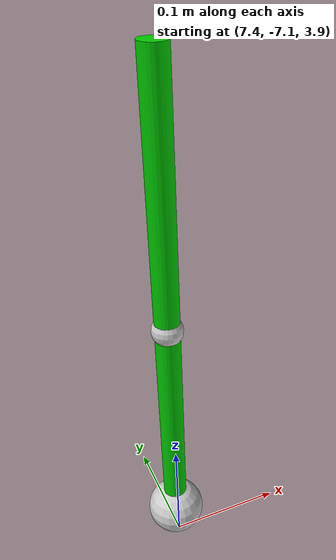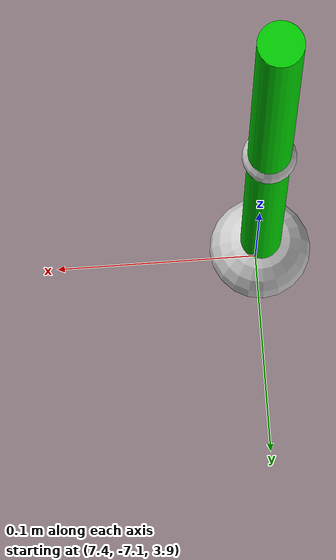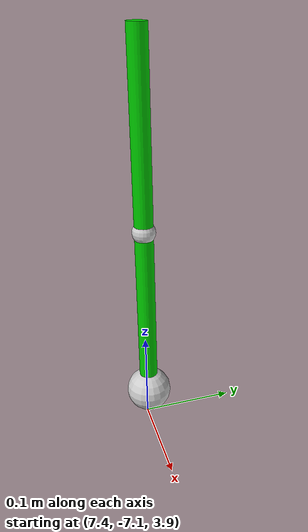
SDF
<sdf version='1.10'>
  <world name='default'>
    <physics name='fast' type='ignored'>
      <real_time_factor>0</real_time_factor>
      <max_step_size>0.001</max_step_size>
      <real_time_update_rate>1000</real_time_update_rate>
    </physics>
    <gravity>0 0 -9.8000000000000007</gravity>
    <magnetic_field>5.5644999999999998e-06 2.2875799999999999e-05 -4.2388400000000002e-05</magnetic_field>
    <atmosphere type='adiabatic'/>
    <scene>
      <ambient>0.400000006 0.400000006 0.400000006 1</ambient>
      <background>0.699999988 0.699999988 0.699999988 1</background>
      <shadows>true</shadows>
    </scene>
    <model name='ground_plane'>
      <static>true</static>
      <link name='link'>
        <collision name='collision'>
          <geometry>
            <plane>
              <normal>0 0 1</normal>
              <size>100 100</size>
            </plane>
          </geometry>
          <surface>
            <friction>
              <ode>
                <mu>100</mu>
                <mu2>50</mu2>
              </ode>
            </friction>
            <bounce/>
            <contact/>
          </surface>
        </collision>
        <visual name='visual'>
          <cast_shadows>false</cast_shadows>
          <geometry>
            <plane>
              <normal>0 0 1</normal>
              <size>100 100</size>
            </plane>
          </geometry>
          <material>
            <script>
              <uri>file://media/materials/scripts/gazebo.material</uri>
              <name>Gazebo/Grey</name>
            </script>
          </material>
        </visual>
        <pose>0 0 0 0 0 0</pose>
        <inertial>
          <pose>0 0 0 0 0 0</pose>
          <mass>1</mass>
          <inertia>
            <ixx>1</ixx>
            <ixy>0</ixy>
            <ixz>0</ixz>
            <iyy>1</iyy>
            <iyz>0</iyz>
            <izz>1</izz>
          </inertia>
        </inertial>
        <enable_wind>false</enable_wind>
      </link>
      <pose>0 0 0 0 0 0</pose>
      <self_collide>false</self_collide>
    </model>
    <model name='model'>
      <pose>7.3987582367434541 -7.0973352519422779 3.9311026872948176 0 0 0</pose>
      <joint name='RR_velocity_control_world' type='fixed'>
        <parent>world</parent>
        <child>RR_velocity_control_link0</child>
        <pose>0 0 0 0 0 0</pose>
      </joint>
      <link name='RR_velocity_control_link0'>
        <collision name='RR_velocity_control_link0_collision_0'>
          <geometry>
            <sphere>
              <radius>0.025000000000000001</radius>
            </sphere>
          </geometry>
          <surface>
            <friction>
              <ode/>
            </friction>
            <bounce/>
            <contact/>
          </surface>
        </collision>
        <visual name='RR_velocity_control_link0_visual_0'>
          <geometry>
            <sphere>
              <radius>0.025000000000000001</radius>
            </sphere>
          </geometry>
          <material>
            <ambient>0.5 0.5 0.5 1</ambient>
            <diffuse>0.800000012 0.800000012 0.800000012 1</diffuse>
            <specular>0.800000012 0.800000012 0.800000012 1</specular>
          </material>
        </visual>
        <pose>0 0 0 0 0 0</pose>
        <inertial>
          <pose>0 0 0 0 0 0</pose>
          <mass>1</mass>
          <inertia>
            <ixx>1</ixx>
            <ixy>0</ixy>
            <ixz>0</ixz>
            <iyy>1</iyy>
            <iyz>0</iyz>
            <izz>1</izz>
          </inertia>
        </inertial>
        <enable_wind>false</enable_wind>
      </link>
      <link name='RR_velocity_control_link1'>
        <pose>0 0 0.099999999999999645 0 0 0</pose>
        <collision name='RR_velocity_control_link1_collision_0'>
          <geometry>
            <cylinder>
              <radius>0.01</radius>
              <length>0.20000000000000001</length>
            </cylinder>
          </geometry>
          <surface>
            <friction>
              <ode/>
            </friction>
            <bounce/>
            <contact/>
          </surface>
        </collision>
        <collision name='RR_velocity_control_link1_collision_1'>
          <geometry>
            <sphere>
              <radius>0.012500000000000001</radius>
            </sphere>
          </geometry>
          <surface>
            <friction>
              <ode/>
            </friction>
            <bounce/>
            <contact/>
          </surface>
        </collision>
        <visual name='RR_velocity_control_link1_visual_0'>
          <geometry>
            <cylinder>
              <radius>0.01</radius>
              <length>0.20000000000000001</length>
            </cylinder>
          </geometry>
          <material>
            <ambient>0 0.5 0 1</ambient>
            <diffuse>0 0.800000012 0 1</diffuse>
            <specular>0 0.800000012 0 1</specular>
          </material>
        </visual>
        <visual name='RR_velocity_control_link1_visual_1'>
          <pose relative_to='RR_velocity_control_joint1'>0 0 0.20000000000000001 0 0 0</pose>
          <geometry>
            <sphere>
              <radius>0.012500000000000001</radius>
            </sphere>
          </geometry>
          <material>
            <ambient>0.5 0.5 0.5 1</ambient>
            <diffuse>0.800000012 0.800000012 0.800000012 1</diffuse>
            <specular>0.800000012 0.800000012 0.800000012 1</specular>
          </material>
        </visual>
        <inertial>
          <mass>0.10000000000000001</mass>
          <inertia>
            <ixx>0.00033579999999999998</ixx>
            <iyy>0.00033579999999999998</iyy>
            <izz>5.0000000000000004e-06</izz>
            <ixy>0</ixy>
            <ixz>0</ixz>
            <iyz>0</iyz>
          </inertia>
          <pose>0 0 0 0 0 0</pose>
        </inertial>
        <enable_wind>false</enable_wind>
      </link>
      <link name='RR_velocity_control_link2'>
        <pose>0 0 0.29999999999999982 0 0 0</pose>
        <collision name='RR_velocity_control_link2_collision'>
          <geometry>
            <cylinder>
              <radius>0.01</radius>
              <length>0.20000000000000001</length>
            </cylinder>
          </geometry>
          <surface>
            <friction>
              <ode/>
            </friction>
            <bounce/>
            <contact/>
          </surface>
        </collision>
        <visual name='RR_velocity_control_link2_visual'>
          <geometry>
            <cylinder>
              <radius>0.01</radius>
              <length>0.20000000000000001</length>
            </cylinder>
          </geometry>
          <material>
            <ambient>0 0.5 0 1</ambient>
            <diffuse>0 0.800000012 0 1</diffuse>
            <specular>0 0.800000012 0 1</specular>
          </material>
        </visual>
        <inertial>
          <mass>0.10000000000000001</mass>
          <inertia>
            <ixx>0.00033579999999999998</ixx>
            <iyy>0.00033579999999999998</iyy>
            <izz>5.0000000000000004e-06</izz>
            <ixy>0</ixy>
            <ixz>0</ixz>
            <iyz>0</iyz>
          </inertia>
          <pose>0 0 0 0 0 0</pose>
        </inertial>
        <enable_wind>false</enable_wind>
      </link>
      <joint name='RR_velocity_control_joint1' type='revolute'>
        <pose>0 0 -0.10000000000000001 0 0 0</pose>
        <parent>RR_velocity_control_link0</parent>
        <child>RR_velocity_control_link1</child>
        <axis>
          <xyz>1 0 0</xyz>
          <limit>
            <lower>-inf</lower>
            <upper>inf</upper>
            <effort>inf</effort>
            <velocity>inf</velocity>
            <stiffness>100000000</stiffness>
            <dissipation>1</dissipation>
          </limit>
          <dynamics>
            <spring_reference>0</spring_reference>
            <spring_stiffness>0</spring_stiffness>
            <damping>0</damping>
            <friction>0</friction>
          </dynamics>
        </axis>
        <dynamics>
          <damping>0.02</damping>
        </dynamics>
      </joint>
      <joint name='RR_velocity_control_joint2' type='revolute'>
        <pose>0 0 -0.10000000000000003 0 0 0</pose>
        <parent>RR_velocity_control_link1</parent>
        <child>RR_velocity_control_link2</child>
        <axis>
          <xyz>1 0 0</xyz>
          <limit>
            <lower>-inf</lower>
            <upper>inf</upper>
            <effort>inf</effort>
            <velocity>inf</velocity>
            <stiffness>100000000</stiffness>
            <dissipation>1</dissipation>
          </limit>
          <dynamics>
            <spring_reference>0</spring_reference>
            <spring_stiffness>0</spring_stiffness>
            <damping>0</damping>
            <friction>0</friction>
          </dynamics>
        </axis>
        <dynamics>
          <damping>0.01</damping>
        </dynamics>
      </joint>
      <plugin name='gz::sim::systems::JointTrajectoryController' filename='gz-sim-joint-trajectory-controller-system'>
        <velocity_p_gain>0.6</velocity_p_gain>
        <velocity_i_gain>175</velocity_i_gain>
        <velocity_cmd_min>-10</velocity_cmd_min>
        <velocity_cmd_max>10</velocity_cmd_max>
        <velocity_p_gain>0.1</velocity_p_gain>
        <velocity_i_gain>200</velocity_i_gain>
        <velocity_cmd_min>-5</velocity_cmd_min>
        <velocity_cmd_max>5</velocity_cmd_max>
      </plugin>
      <static>false</static>
      <self_collide>false</self_collide>
    </model>
  </world>
</sdf>
